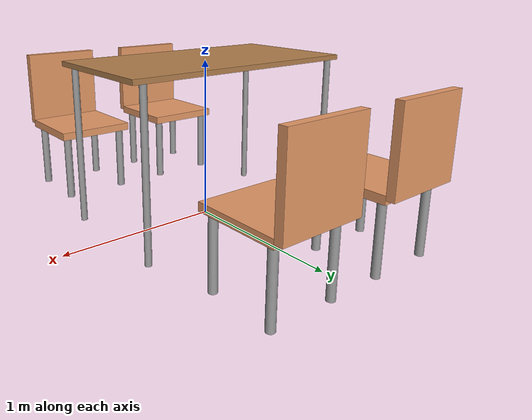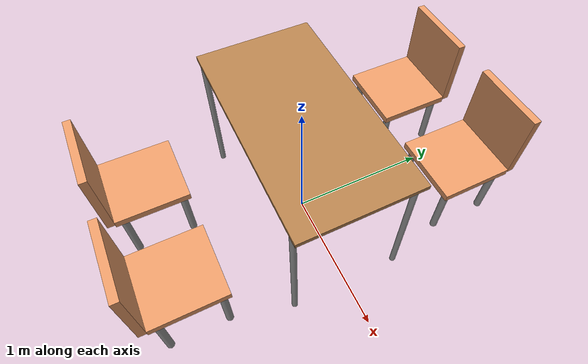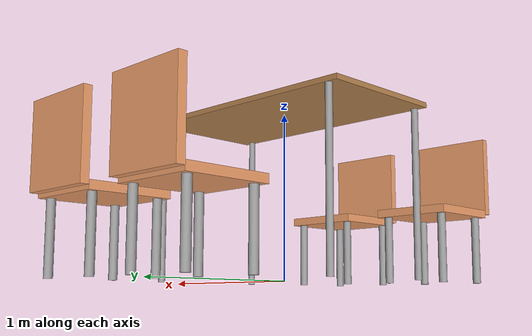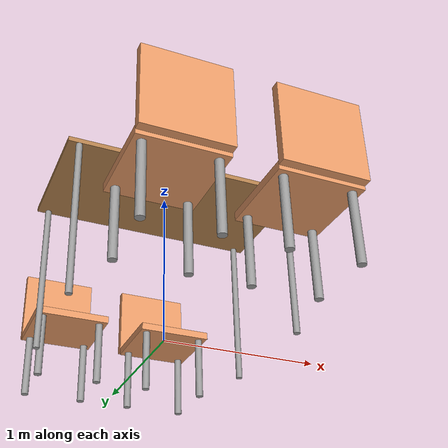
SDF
<?xml version='1.0'?>
<sdf version='1.7'>
  <model name='chair_with_table'>
    <model name='chair_1'>
      <static>1</static>
      <link name='chair_base'>
        <visual name='seat_visual'>
          <geometry>
            <box>
              <size>0.5 0.5 0.05</size>
            </box>
          </geometry>
          <pose>0 0 0.45 0 -0 0</pose>
          <material>
            <ambient>0.8 0.5 0.3 1</ambient>
            <diffuse>0.9 0.6 0.4 1</diffuse>
          </material>
        </visual>
        <collision name='seat_collision'>
          <geometry>
            <box>
              <size>0.5 0.5 0.05</size>
            </box>
          </geometry>
          <pose>0 0 0.45 0 -0 0</pose>
        </collision>
        <visual name='backrest_visual'>
          <geometry>
            <box>
              <size>0.5 0.05 0.5</size>
            </box>
          </geometry>
          <pose>0 -0.275 0.7 0 -0 0</pose>
          <material>
            <ambient>0.8 0.5 0.3 1</ambient>
            <diffuse>0.9 0.6 0.4 1</diffuse>
          </material>
        </visual>
        <collision name='backrest_collision'>
          <geometry>
            <box>
              <size>0.5 0.05 0.5</size>
            </box>
          </geometry>
          <pose>0 -0.275 0.7 0 -0 0</pose>
        </collision>
        <visual name='leg1_visual'>
          <geometry>
            <cylinder>
              <radius>0.025</radius>
              <length>0.45</length>
            </cylinder>
          </geometry>
          <pose>0.2 0.2 0.225 0 -0 0</pose>
          <material>
            <ambient>0.5 0.5 0.5 1</ambient>
            <diffuse>0.6 0.6 0.6 1</diffuse>
          </material>
        </visual>
        <collision name='leg1_collision'>
          <geometry>
            <cylinder>
              <radius>0.025</radius>
              <length>0.45</length>
            </cylinder>
          </geometry>
          <pose>0.2 0.2 0.225 0 -0 0</pose>
        </collision>
        <visual name='leg2_visual'>
          <geometry>
            <cylinder>
              <radius>0.025</radius>
              <length>0.45</length>
            </cylinder>
          </geometry>
          <pose>0.2 -0.2 0.225 0 -0 0</pose>
          <material>
            <ambient>0.5 0.5 0.5 1</ambient>
            <diffuse>0.6 0.6 0.6 1</diffuse>
          </material>
        </visual>
        <collision name='leg2_collision'>
          <geometry>
            <cylinder>
              <radius>0.025</radius>
              <length>0.45</length>
            </cylinder>
          </geometry>
          <pose>0.2 -0.2 0.225 0 -0 0</pose>
        </collision>
        <visual name='leg3_visual'>
          <geometry>
            <cylinder>
              <radius>0.025</radius>
              <length>0.45</length>
            </cylinder>
          </geometry>
          <pose>-0.2 0.2 0.225 0 -0 0</pose>
          <material>
            <ambient>0.5 0.5 0.5 1</ambient>
            <diffuse>0.6 0.6 0.6 1</diffuse>
          </material>
        </visual>
        <collision name='leg3_collision'>
          <geometry>
            <cylinder>
              <radius>0.025</radius>
              <length>0.45</length>
            </cylinder>
          </geometry>
          <pose>-0.2 0.2 0.225 0 -0 0</pose>
        </collision>
        <visual name='leg4_visual'>
          <geometry>
            <cylinder>
              <radius>0.025</radius>
              <length>0.45</length>
            </cylinder>
          </geometry>
          <pose>-0.2 -0.2 0.225 0 -0 0</pose>
          <material>
            <ambient>0.5 0.5 0.5 1</ambient>
            <diffuse>0.6 0.6 0.6 1</diffuse>
          </material>
        </visual>
        <collision name='leg4_collision'>
          <geometry>
            <cylinder>
              <radius>0.025</radius>
              <length>0.45</length>
            </cylinder>
          </geometry>
          <pose>-0.2 -0.2 0.225 0 -0 0</pose>
        </collision>
      </link>
      <pose>-0.375 1.0 0 0 0 3.141592</pose>
    </model>
    <model name='chair_2'>
      <static>1</static>
      <link name='chair_base'>
        <visual name='seat_visual'>
          <geometry>
            <box>
              <size>0.5 0.5 0.05</size>
            </box>
          </geometry>
          <pose>0 0 0.45 0 -0 0</pose>
          <material>
            <ambient>0.8 0.5 0.3 1</ambient>
            <diffuse>0.9 0.6 0.4 1</diffuse>
          </material>
        </visual>
        <collision name='seat_collision'>
          <geometry>
            <box>
              <size>0.5 0.5 0.05</size>
            </box>
          </geometry>
          <pose>0 0 0.45 0 -0 0</pose>
        </collision>
        <visual name='backrest_visual'>
          <geometry>
            <box>
              <size>0.5 0.05 0.5</size>
            </box>
          </geometry>
          <pose>0 -0.275 0.7 0 -0 0</pose>
          <material>
            <ambient>0.8 0.5 0.3 1</ambient>
            <diffuse>0.9 0.6 0.4 1</diffuse>
          </material>
        </visual>
        <collision name='backrest_collision'>
          <geometry>
            <box>
              <size>0.5 0.05 0.5</size>
            </box>
          </geometry>
          <pose>0 -0.275 0.7 0 -0 0</pose>
        </collision>
        <visual name='leg1_visual'>
          <geometry>
            <cylinder>
              <radius>0.025</radius>
              <length>0.45</length>
            </cylinder>
          </geometry>
          <pose>0.2 0.2 0.225 0 -0 0</pose>
          <material>
            <ambient>0.5 0.5 0.5 1</ambient>
            <diffuse>0.6 0.6 0.6 1</diffuse>
          </material>
        </visual>
        <collision name='leg1_collision'>
          <geometry>
            <cylinder>
              <radius>0.025</radius>
              <length>0.45</length>
            </cylinder>
          </geometry>
          <pose>0.2 0.2 0.225 0 -0 0</pose>
        </collision>
        <visual name='leg2_visual'>
          <geometry>
            <cylinder>
              <radius>0.025</radius>
              <length>0.45</length>
            </cylinder>
          </geometry>
          <pose>0.2 -0.2 0.225 0 -0 0</pose>
          <material>
            <ambient>0.5 0.5 0.5 1</ambient>
            <diffuse>0.6 0.6 0.6 1</diffuse>
          </material>
        </visual>
        <collision name='leg2_collision'>
          <geometry>
            <cylinder>
              <radius>0.025</radius>
              <length>0.45</length>
            </cylinder>
          </geometry>
          <pose>0.2 -0.2 0.225 0 -0 0</pose>
        </collision>
        <visual name='leg3_visual'>
          <geometry>
            <cylinder>
              <radius>0.025</radius>
              <length>0.45</length>
            </cylinder>
          </geometry>
          <pose>-0.2 0.2 0.225 0 -0 0</pose>
          <material>
            <ambient>0.5 0.5 0.5 1</ambient>
            <diffuse>0.6 0.6 0.6 1</diffuse>
          </material>
        </visual>
        <collision name='leg3_collision'>
          <geometry>
            <cylinder>
              <radius>0.025</radius>
              <length>0.45</length>
            </cylinder>
          </geometry>
          <pose>-0.2 0.2 0.225 0 -0 0</pose>
        </collision>
        <visual name='leg4_visual'>
          <geometry>
            <cylinder>
              <radius>0.025</radius>
              <length>0.45</length>
            </cylinder>
          </geometry>
          <pose>-0.2 -0.2 0.225 0 -0 0</pose>
          <material>
            <ambient>0.5 0.5 0.5 1</ambient>
            <diffuse>0.6 0.6 0.6 1</diffuse>
          </material>
        </visual>
        <collision name='leg4_collision'>
          <geometry>
            <cylinder>
              <radius>0.025</radius>
              <length>0.45</length>
            </cylinder>
          </geometry>
          <pose>-0.2 -0.2 0.225 0 -0 0</pose>
        </collision>
      </link>
      <pose>0.375 1.0 0 0 0 3.141592</pose>
    </model>
    <model name='chair_3'>
      <static>1</static>
      <link name='chair_base'>
        <visual name='seat_visual'>
          <geometry>
            <box>
              <size>0.5 0.5 0.05</size>
            </box>
          </geometry>
          <pose>0 0 0.45 0 -0 0</pose>
          <material>
            <ambient>0.8 0.5 0.3 1</ambient>
            <diffuse>0.9 0.6 0.4 1</diffuse>
          </material>
        </visual>
        <collision name='seat_collision'>
          <geometry>
            <box>
              <size>0.5 0.5 0.05</size>
            </box>
          </geometry>
          <pose>0 0 0.45 0 -0 0</pose>
        </collision>
        <visual name='backrest_visual'>
          <geometry>
            <box>
              <size>0.5 0.05 0.5</size>
            </box>
          </geometry>
          <pose>0 -0.275 0.7 0 -0 0</pose>
          <material>
            <ambient>0.8 0.5 0.3 1</ambient>
            <diffuse>0.9 0.6 0.4 1</diffuse>
          </material>
        </visual>
        <collision name='backrest_collision'>
          <geometry>
            <box>
              <size>0.5 0.05 0.5</size>
            </box>
          </geometry>
          <pose>0 -0.275 0.7 0 -0 0</pose>
        </collision>
        <visual name='leg1_visual'>
          <geometry>
            <cylinder>
              <radius>0.025</radius>
              <length>0.45</length>
            </cylinder>
          </geometry>
          <pose>0.2 0.2 0.225 0 -0 0</pose>
          <material>
            <ambient>0.5 0.5 0.5 1</ambient>
            <diffuse>0.6 0.6 0.6 1</diffuse>
          </material>
        </visual>
        <collision name='leg1_collision'>
          <geometry>
            <cylinder>
              <radius>0.025</radius>
              <length>0.45</length>
            </cylinder>
          </geometry>
          <pose>0.2 0.2 0.225 0 -0 0</pose>
        </collision>
        <visual name='leg2_visual'>
          <geometry>
            <cylinder>
              <radius>0.025</radius>
              <length>0.45</length>
            </cylinder>
          </geometry>
          <pose>0.2 -0.2 0.225 0 -0 0</pose>
          <material>
            <ambient>0.5 0.5 0.5 1</ambient>
            <diffuse>0.6 0.6 0.6 1</diffuse>
          </material>
        </visual>
        <collision name='leg2_collision'>
          <geometry>
            <cylinder>
              <radius>0.025</radius>
              <length>0.45</length>
            </cylinder>
          </geometry>
          <pose>0.2 -0.2 0.225 0 -0 0</pose>
        </collision>
        <visual name='leg3_visual'>
          <geometry>
            <cylinder>
              <radius>0.025</radius>
              <length>0.45</length>
            </cylinder>
          </geometry>
          <pose>-0.2 0.2 0.225 0 -0 0</pose>
          <material>
            <ambient>0.5 0.5 0.5 1</ambient>
            <diffuse>0.6 0.6 0.6 1</diffuse>
          </material>
        </visual>
        <collision name='leg3_collision'>
          <geometry>
            <cylinder>
              <radius>0.025</radius>
              <length>0.45</length>
            </cylinder>
          </geometry>
          <pose>-0.2 0.2 0.225 0 -0 0</pose>
        </collision>
        <visual name='leg4_visual'>
          <geometry>
            <cylinder>
              <radius>0.025</radius>
              <length>0.45</length>
            </cylinder>
          </geometry>
          <pose>-0.2 -0.2 0.225 0 -0 0</pose>
          <material>
            <ambient>0.5 0.5 0.5 1</ambient>
            <diffuse>0.6 0.6 0.6 1</diffuse>
          </material>
        </visual>
        <collision name='leg4_collision'>
          <geometry>
            <cylinder>
              <radius>0.025</radius>
              <length>0.45</length>
            </cylinder>
          </geometry>
          <pose>-0.2 -0.2 0.225 0 -0 0</pose>
        </collision>
      </link>
      <pose>-0.375 -1.0 0 0 0 0</pose>
    </model>
    <model name='chair_4'>
      <static>1</static>
      <link name='chair_base'>
        <visual name='seat_visual'>
          <geometry>
            <box>
              <size>0.5 0.5 0.05</size>
            </box>
          </geometry>
          <pose>0 0 0.45 0 -0 0</pose>
          <material>
            <ambient>0.8 0.5 0.3 1</ambient>
            <diffuse>0.9 0.6 0.4 1</diffuse>
          </material>
        </visual>
        <collision name='seat_collision'>
          <geometry>
            <box>
              <size>0.5 0.5 0.05</size>
            </box>
          </geometry>
          <pose>0 0 0.45 0 -0 0</pose>
        </collision>
        <visual name='backrest_visual'>
          <geometry>
            <box>
              <size>0.5 0.05 0.5</size>
            </box>
          </geometry>
          <pose>0 -0.275 0.7 0 -0 0</pose>
          <material>
            <ambient>0.8 0.5 0.3 1</ambient>
            <diffuse>0.9 0.6 0.4 1</diffuse>
          </material>
        </visual>
        <collision name='backrest_collision'>
          <geometry>
            <box>
              <size>0.5 0.05 0.5</size>
            </box>
          </geometry>
          <pose>0 -0.275 0.7 0 -0 0</pose>
        </collision>
        <visual name='leg1_visual'>
          <geometry>
            <cylinder>
              <radius>0.025</radius>
              <length>0.45</length>
            </cylinder>
          </geometry>
          <pose>0.2 0.2 0.225 0 -0 0</pose>
          <material>
            <ambient>0.5 0.5 0.5 1</ambient>
            <diffuse>0.6 0.6 0.6 1</diffuse>
          </material>
        </visual>
        <collision name='leg1_collision'>
          <geometry>
            <cylinder>
              <radius>0.025</radius>
              <length>0.45</length>
            </cylinder>
          </geometry>
          <pose>0.2 0.2 0.225 0 -0 0</pose>
        </collision>
        <visual name='leg2_visual'>
          <geometry>
            <cylinder>
              <radius>0.025</radius>
              <length>0.45</length>
            </cylinder>
          </geometry>
          <pose>0.2 -0.2 0.225 0 -0 0</pose>
          <material>
            <ambient>0.5 0.5 0.5 1</ambient>
            <diffuse>0.6 0.6 0.6 1</diffuse>
          </material>
        </visual>
        <collision name='leg2_collision'>
          <geometry>
            <cylinder>
              <radius>0.025</radius>
              <length>0.45</length>
            </cylinder>
          </geometry>
          <pose>0.2 -0.2 0.225 0 -0 0</pose>
        </collision>
        <visual name='leg3_visual'>
          <geometry>
            <cylinder>
              <radius>0.025</radius>
              <length>0.45</length>
            </cylinder>
          </geometry>
          <pose>-0.2 0.2 0.225 0 -0 0</pose>
          <material>
            <ambient>0.5 0.5 0.5 1</ambient>
            <diffuse>0.6 0.6 0.6 1</diffuse>
          </material>
        </visual>
        <collision name='leg3_collision'>
          <geometry>
            <cylinder>
              <radius>0.025</radius>
              <length>0.45</length>
            </cylinder>
          </geometry>
          <pose>-0.2 0.2 0.225 0 -0 0</pose>
        </collision>
        <visual name='leg4_visual'>
          <geometry>
            <cylinder>
              <radius>0.025</radius>
              <length>0.45</length>
            </cylinder>
          </geometry>
          <pose>-0.2 -0.2 0.225 0 -0 0</pose>
          <material>
            <ambient>0.5 0.5 0.5 1</ambient>
            <diffuse>0.6 0.6 0.6 1</diffuse>
          </material>
        </visual>
        <collision name='leg4_collision'>
          <geometry>
            <cylinder>
              <radius>0.025</radius>
              <length>0.45</length>
            </cylinder>
          </geometry>
          <pose>-0.2 -0.2 0.225 0 -0 0</pose>
        </collision>
      </link>
      <pose>0.375 -1.0 0 0 0 0</pose>
    </model>
    <model name='table'>
      <static>1</static>
      <link name='link'>
        <collision name='surface'>
          <pose>0 0 1 0 -0 0</pose>
          <geometry>
            <box>
              <size>1.5 0.8 0.03</size>
            </box>
          </geometry>
          <surface>
            <friction>
              <ode>
                <mu>0.6</mu>
                <mu2>0.6</mu2>
              </ode>
            </friction>
          </surface>
        </collision>
        <visual name='visual1'>
          <pose>0 0 1 0 -0 0</pose>
          <geometry>
            <box>
              <size>1.5 0.8 0.03</size>
            </box>
          </geometry>
          <material>
            <script>
              <uri>file://media/materials/scripts/gazebo.material</uri>
              <name>Gazebo/Wood</name>
            </script>
          </material>
        </visual>
        <collision name='front_left_leg'>
          <pose>0.68 0.38 0.5 0 -0 0</pose>
          <geometry>
            <cylinder>
              <radius>0.02</radius>
              <length>1</length>
            </cylinder>
          </geometry>
        </collision>
        <visual name='front_left_leg'>
          <pose>0.68 0.38 0.5 0 -0 0</pose>
          <geometry>
            <cylinder>
              <radius>0.02</radius>
              <length>1</length>
            </cylinder>
          </geometry>
          <material>
            <script>
              <uri>file://media/materials/scripts/gazebo.material</uri>
              <name>Gazebo/Grey</name>
            </script>
          </material>
        </visual>
        <collision name='front_right_leg'>
          <pose>0.68 -0.38 0.5 0 -0 0</pose>
          <geometry>
            <cylinder>
              <radius>0.02</radius>
              <length>1</length>
            </cylinder>
          </geometry>
        </collision>
        <visual name='front_right_leg'>
          <pose>0.68 -0.38 0.5 0 -0 0</pose>
          <geometry>
            <cylinder>
              <radius>0.02</radius>
              <length>1</length>
            </cylinder>
          </geometry>
          <material>
            <script>
              <uri>file://media/materials/scripts/gazebo.material</uri>
              <name>Gazebo/Grey</name>
            </script>
          </material>
        </visual>
        <collision name='back_right_leg'>
          <pose>-0.68 -0.38 0.5 0 -0 0</pose>
          <geometry>
            <cylinder>
              <radius>0.02</radius>
              <length>1</length>
            </cylinder>
          </geometry>
        </collision>
        <visual name='back_right_leg'>
          <pose>-0.68 -0.38 0.5 0 -0 0</pose>
          <geometry>
            <cylinder>
              <radius>0.02</radius>
              <length>1</length>
            </cylinder>
          </geometry>
          <material>
            <script>
              <uri>file://media/materials/scripts/gazebo.material</uri>
              <name>Gazebo/Grey</name>
            </script>
          </material>
        </visual>
        <collision name='back_left_leg'>
          <pose>-0.68 0.38 0.5 0 -0 0</pose>
          <geometry>
            <cylinder>
              <radius>0.02</radius>
              <length>1</length>
            </cylinder>
          </geometry>
        </collision>
        <visual name='back_left_leg'>
          <pose>-0.68 0.38 0.5 0 -0 0</pose>
          <geometry>
            <cylinder>
              <radius>0.02</radius>
              <length>1</length>
            </cylinder>
          </geometry>
          <material>
            <script>
              <uri>file://media/materials/scripts/gazebo.material</uri>
              <name>Gazebo/Grey</name>
            </script>
          </material>
        </visual>
      </link>
      <pose>0.0 0.0 0.0 0.0 0.0 0.0</pose>
    </model>
    <static>1</static>
    <allow_auto_disable>1</allow_auto_disable>
  </model>
</sdf>
